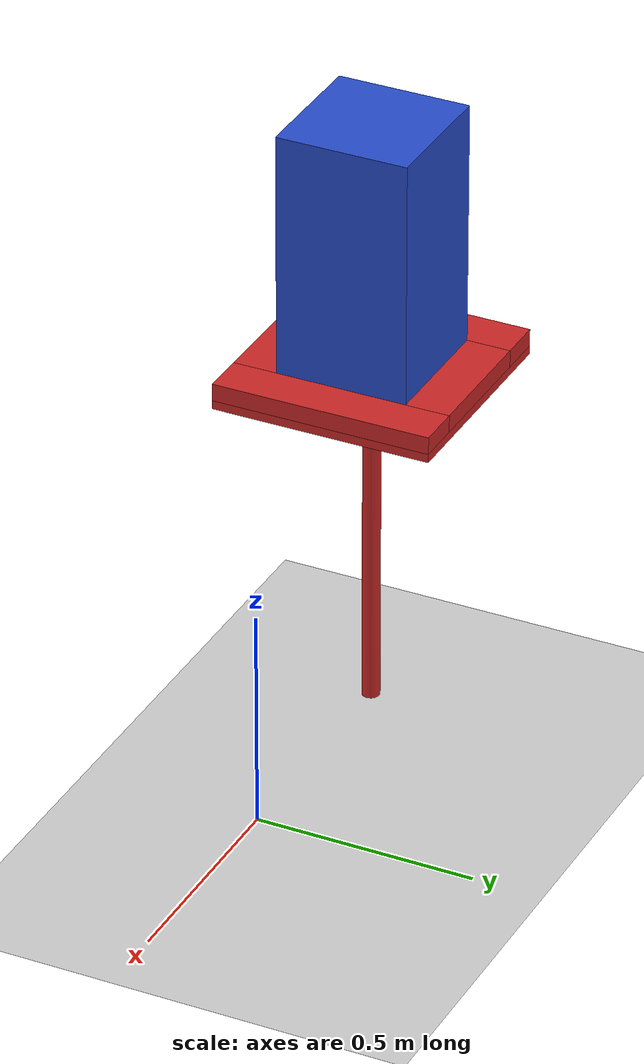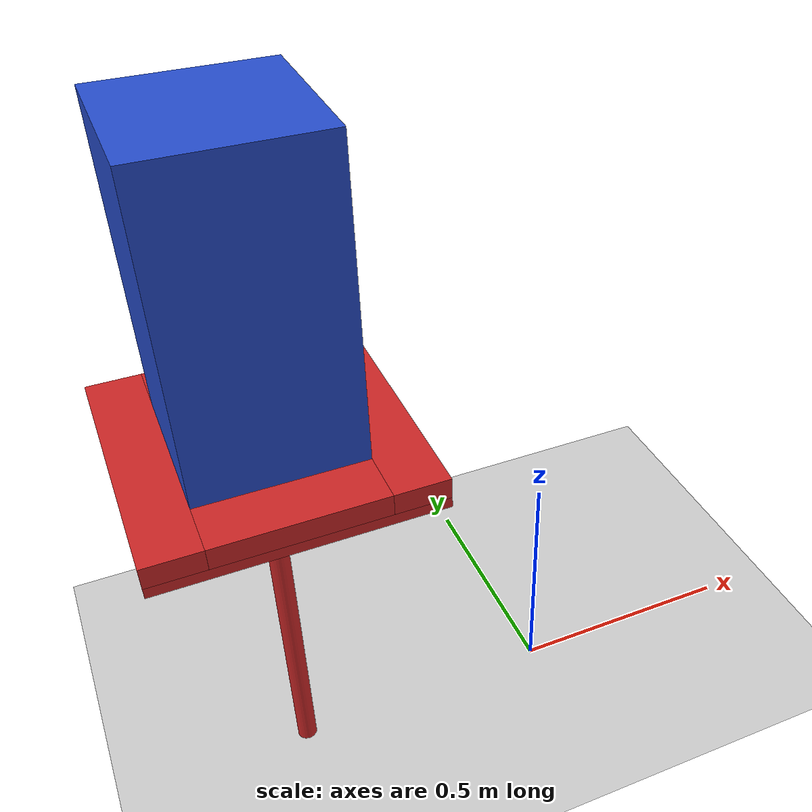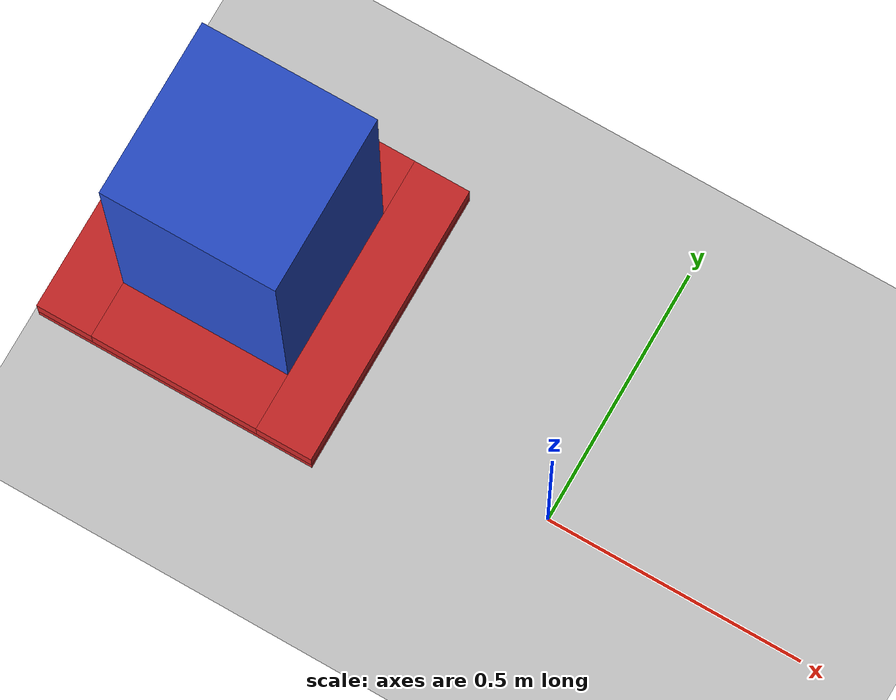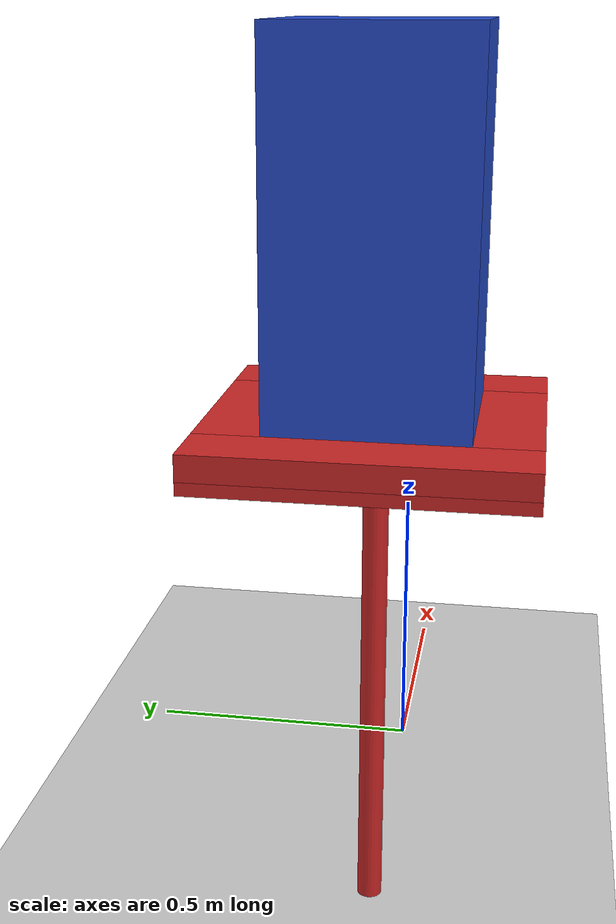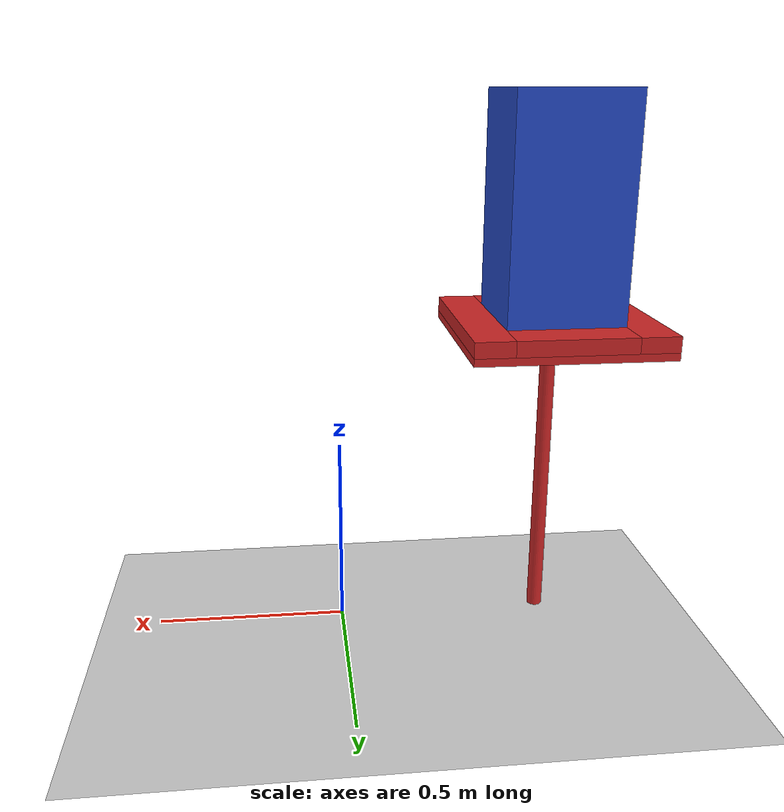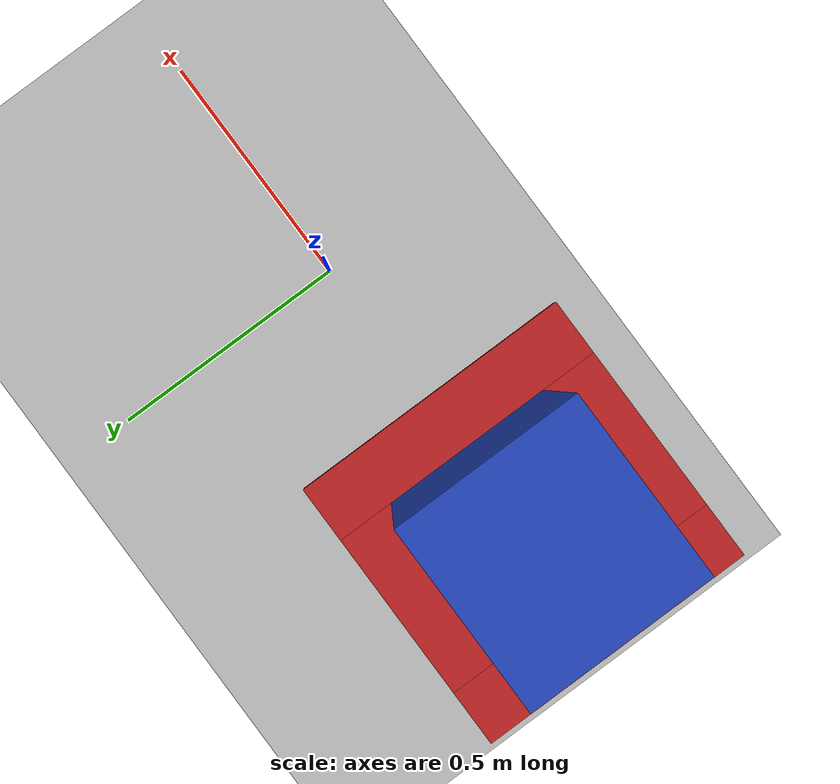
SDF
<?xml version="1.0"?>
<sdf version="1.5">
  <world name="default">
    <light name='sun' type='directional'>
      <cast_shadows>1</cast_shadows>
      <pose>0 0 10 0 -0 0</pose>
      <diffuse>0.8 0.8 0.8 1</diffuse>
      <specular>0.1 0.1 0.1 1</specular>
      <attenuation>
        <range>1000</range>
        <constant>0.9</constant>
        <linear>0.01</linear>
        <quadratic>0.001</quadratic>
      </attenuation>
      <direction>-0.5 0.5 -1</direction>
    </light>
    <model name='ground_plane'>
      <static>1</static>
      <link name='link'>
        <collision name='collision'>
          <geometry>
            <plane>
              <normal>0 0 1</normal>
              <size>100 100</size>
            </plane>
          </geometry>
          <surface>
            <friction>
              <ode>
                <mu>100</mu>
                <mu2>50</mu2>
              </ode>
            </friction>
            <contact>
              <ode/>
            </contact>
            <bounce/>
          </surface>
          <max_contacts>10</max_contacts>
        </collision>
        <visual name='visual'>
          <cast_shadows>0</cast_shadows>
          <geometry>
            <plane>
              <normal>0 0 1</normal>
              <size>100 100</size>
            </plane>
          </geometry>
          <material>
            <script>
              <uri>file://media/materials/scripts/gazebo.material</uri>
              <name>Gazebo/Grey</name>
            </script>
          </material>
        </visual>
        <velocity_decay>
          <linear>0</linear>
          <angular>0</angular>
        </velocity_decay>
        <self_collide>0</self_collide>
        <kinematic>0</kinematic>
        <gravity>1</gravity>
      </link>
    </model>
    <physics type='ode'>
      <max_step_size>0.001</max_step_size>
      <real_time_factor>1</real_time_factor>
      <real_time_update_rate>1000</real_time_update_rate>
      <gravity>0 0 -9.81</gravity>
    </physics>
    <scene>
      <ambient>0.4 0.4 0.4 1</ambient>
      <background>0.7 0.7 0.7 1</background>
      <shadows>1</shadows>
    </scene>

    <model name="Table">
      <pose>-0.55 0 0.79 0 0 0</pose>
      <static>true</static>

      <link name="boardLink">
	<pose>0 0 0 0 0 0 </pose>
        <collision name="boardCollision">
          <geometry>
            <box>
              <size>0.5 0.5 0.02</size>
            </box>
          </geometry>
          <surface>
            <friction>
              <ode>
                <mu>0.9</mu>
                <mu2>0.9</mu2>
              </ode>
            </friction>
            <contact>
              <ode/>
            </contact>
            <bounce/>
          </surface>
        </collision>
        <visual name="boardVisual">
          <geometry>
            <box>
              <size>0.5 0.5 0.02</size>
            </box>
          </geometry>
          <material>
            <script>
              <name>Gazebo/Red</name>
              <uri>file://media/materials/scripts/gazebo.material</uri>
            </script>
          </material>
        </visual>
      </link>

      <link name="pillarLink">
	<pose>0 0 -0.4 0 0 0 </pose>
        <collision name="pillarCollision">
          <geometry>
            <cylinder>
              <radius>0.02</radius>
              <length>0.8</length>
            </cylinder>
          </geometry>
          <surface>
            <friction>
              <ode>
                <mu>0</mu>
                <mu2>0</mu2>
              </ode>
            </friction>
            <contact>
              <ode/>
            </contact>
            <bounce/>
          </surface>
        </collision>
        <visual name="pillarVisual">
          <geometry>
            <cylinder>
              <radius>0.02</radius>
              <length>0.8</length>
            </cylinder>
          </geometry>
          <material>
            <script>
              <name>Gazebo/Red</name>
              <uri>file://media/materials/scripts/gazebo.material</uri>
            </script>
          </material>
        </visual>
      </link>

      <link name="shortedge1Link">
	<pose>0.0 0.2 0.03 0 0 0</pose>
        <collision name="shortdge1Collision">
          <geometry>
            <box>
              <size>0.3 0.1 0.04</size>
            </box>
          </geometry>
          <surface>
            <friction>
              <ode>
                <mu>1</mu>
                <mu2>1</mu2>
              </ode>
            </friction>
            <contact>
              <ode/>
            </contact>
            <bounce/>
          </surface>
        </collision>
        <visual name="shortedge1Visual">
          <geometry>
            <box>
              <size>0.3 0.1 0.04</size>
            </box>
          </geometry>
          <material>
            <script>
              <name>Gazebo/Red</name>
              <uri>file://media/materials/scripts/gazebo.material</uri>
            </script>
          </material>
        </visual>
      </link>

      <link name="shortedge2Link">
	<pose>0.0 -0.2 0.03 0 0 0</pose>
        <collision name="shortdge2Collision">
          <geometry>
            <box>
              <size>0.3 0.1 0.04</size>
            </box>
          </geometry>
          <surface>
            <friction>
              <ode>
                <mu>1</mu>
                <mu2>1</mu2>
              </ode>
            </friction>
            <contact>
              <ode/>
            </contact>
            <bounce/>
          </surface>
        </collision>
        <visual name="shortedge2Visual">
          <geometry>
            <box>
              <size>0.3 0.1 0.04</size>
            </box>
          </geometry>
          <material>
            <script>
              <name>Gazebo/Red</name>
              <uri>file://media/materials/scripts/gazebo.material</uri>
            </script>
          </material>
        </visual>
      </link>

      <link name="longedge1Link">
	<pose>-0.2 0.0 0.03 0 0 0</pose>
        <collision name="longedge1Collision">
          <geometry>
            <box>
              <size>0.1 0.5 0.04</size>
            </box>
          </geometry>
          <surface>
            <friction>
              <ode>
                <mu>1</mu>
                <mu2>1</mu2>
              </ode>
            </friction>
            <contact>
              <ode/>
            </contact>
            <bounce/>
          </surface>
        </collision>
        <visual name="longedge1Visual">
          <geometry>
            <box>
              <size>0.1 0.5 0.04</size>
            </box>
          </geometry>
          <material>
            <script>
              <name>Gazebo/Red</name>
              <uri>file://media/materials/scripts/gazebo.material</uri>
            </script>
          </material>
        </visual>
      </link>

      <link name="longedge2Link">
	<pose>0.2 0.0 0.03 0 0 0</pose>
        <collision name="longedge2Collision">
          <geometry>
            <box>
              <size>0.1 0.5 0.04</size>
            </box>
          </geometry>
          <surface>
            <friction>
              <ode>
                <mu>1</mu>
                <mu2>1</mu2>
              </ode>
            </friction>
            <contact>
              <ode/>
            </contact>
            <bounce/>
          </surface>
        </collision>
        <visual name="longedge2Visual">
          <geometry>
            <box>
              <size>0.1 0.5 0.04</size>
            </box>
          </geometry>
          <material>
            <script>
              <name>Gazebo/Red</name>
              <uri>file://media/materials/scripts/gazebo.material</uri>
            </script>
          </material>
        </visual>
      </link>

    </model>

    <model name="ObjectBox">
      <pose>-0.55 0 1.10 0 0 0</pose>
      <static>false</static>
      <link name="obLink">
        <inertial>
          <mass>1</mass>
          <inertia>
            <ixx>0.166667</ixx>
            <ixy>0</ixy>
            <ixz>0</ixz>
            <iyy>0.166667</iyy>
            <iyz>0</iyz>
            <izz>0.166667</izz>
          </inertia>
        </inertial>
        <collision name="obCollision">
          <geometry>
            <box>
              <size>0.3 0.3 0.6</size>
            </box>
          </geometry>
          <surface>
              <friction>
                <ode>
                  <mu>1.9</mu>
                  <mu2>1.9</mu2>
                </ode>
              </friction>
        </surface>
        </collision>

        <visual name="obVisual">
          <geometry>
            <box>
              <size>0.3 0.3 0.6</size>
            </box>
          </geometry>
          <material>
            <script>
              <name>Gazebo/Blue</name>
              <uri>file://media/materials/scripts/gazebo.material</uri>
            </script>
          </material>
        </visual>
      </link>
    </model>
    <gui fullscreen='0'>
      <camera name='user_camera'>
        <pose frame=''>-2.5 0.1 2.5 0 0.55 0.025</pose>
        <view_controller>orbit</view_controller>
        <projection_type>perspective</projection_type>
      </camera>
    </gui>
  </world>
</sdf>
